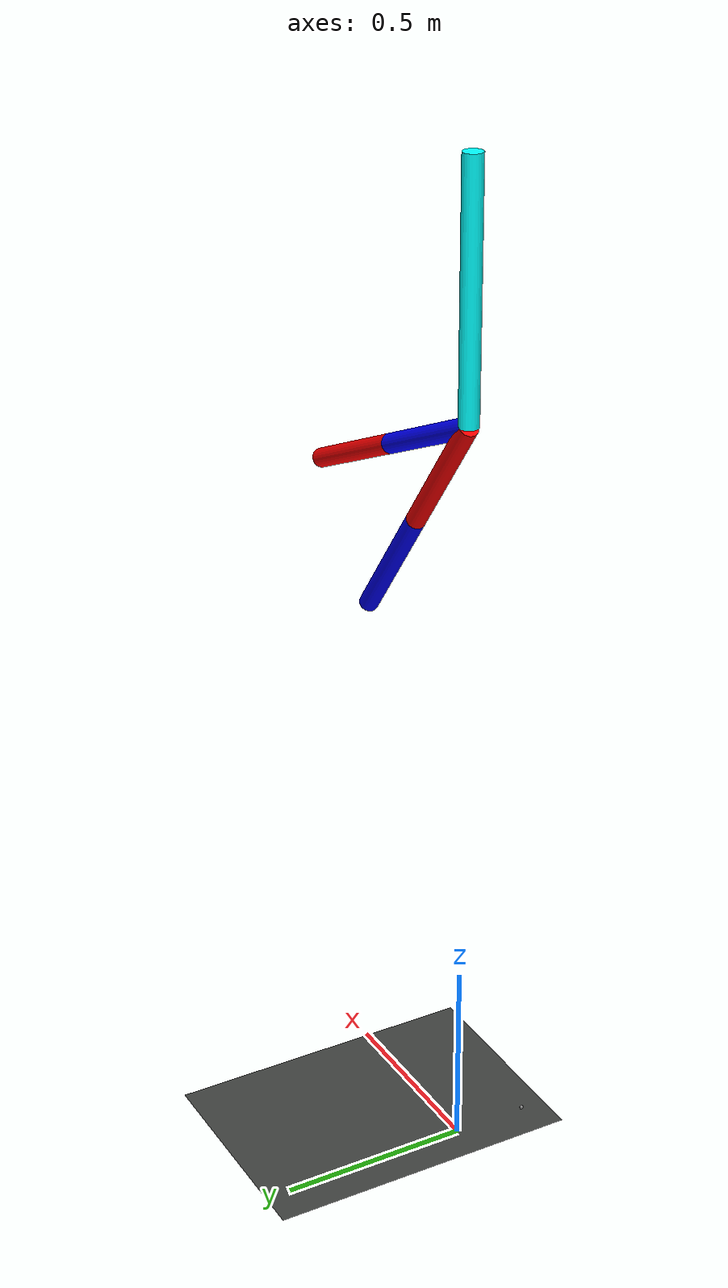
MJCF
<mujoco model="five_link_walker">
    <compiler angle="radian" />
    <option gravity="0 0 -9.81" />
    <size njmax="500" nconmax="100" />
    <worldbody>

<light directional="true" cutoff="4" exponent="20" diffuse="1 1 1" specular="0 0 0" pos=".9 .3 2.5" dir="-.9 -.3 -2.5 "/>

		<!-- ======= Ground ======= -->
		<geom name="ground" type="plane" pos="0 0 0" size="0.5 1 2" rgba=" .25 .26 .25 1" contype="0" conaffinity="0"/>
		<site name="rFix" pos="0 -.2 .005"/>
		<site name="lFix" pos="0 .2 .005"/>

        <geom size="0.025 0.315" pos="0 0 2.315" type="cylinder" contype="1" conaffinity="2" group="1" rgba="0 255 61 0.9" />
        <body name="right_thigh" pos="0 0 2" quat="0.540302 0 0.841471 0">
            <inertial pos="0 0 0.11" quat="0.707107 0 0 0.707107" mass="6.8" diaginertia="0.156667 0.156667 0.156667" />
            <joint name="q1_right" pos="0 0 0" axis="0 1 0" />
            <geom size="0.025 0.2" pos="0 0 0.2" type="cylinder" contype="2" conaffinity="3" group="1" rgba="0 0 1 1" />
            <body name="right_shin" pos="0 0 0.4">
                <inertial pos="0 0 0.24" quat="0.707107 0 0 0.707107" mass="3.2" diaginertia="0.0666667 0.0666667 0.0666667" />
                <joint name="q2_right" pos="0 0 0" axis="0 1 0" />
                <geom size="0.025 0.2" pos="0 0 0.2" type="cylinder" contype="2" conaffinity="3" group="1" rgba="1 0 0 1" />
            </body>
        </body>
        <body name="left_thigh" pos="0 0 2" quat="0.315322 0 0.948985 0">
            <inertial pos="0 0 0.11" quat="0.707107 0 0 0.707107" mass="6.8" diaginertia="0.156667 0.156667 0.156667" />
            <joint name="q1_left" pos="0 0 0" axis="0 1 0" />
            <geom size="0.025 0.2" pos="0 0 0.2" type="cylinder" contype="2" conaffinity="4" group="1" rgba="1 0 0 1" />
            <body name="left_shin" pos="0 0 0.4">
                <inertial pos="0 0 0.24" quat="0.707107 0 0 0.707107" mass="3.2" diaginertia="0.0666667 0.0666667 0.0666667" />
                <joint name="q2_left" pos="0 0 0" axis="0 1 0" />
                <geom size="0.025 0.2" pos="0 0 0.2" type="cylinder" contype="2" conaffinity="4" group="1" rgba="0 0 1 1" />
            </body>
        </body>
    </worldbody>
</mujoco>
